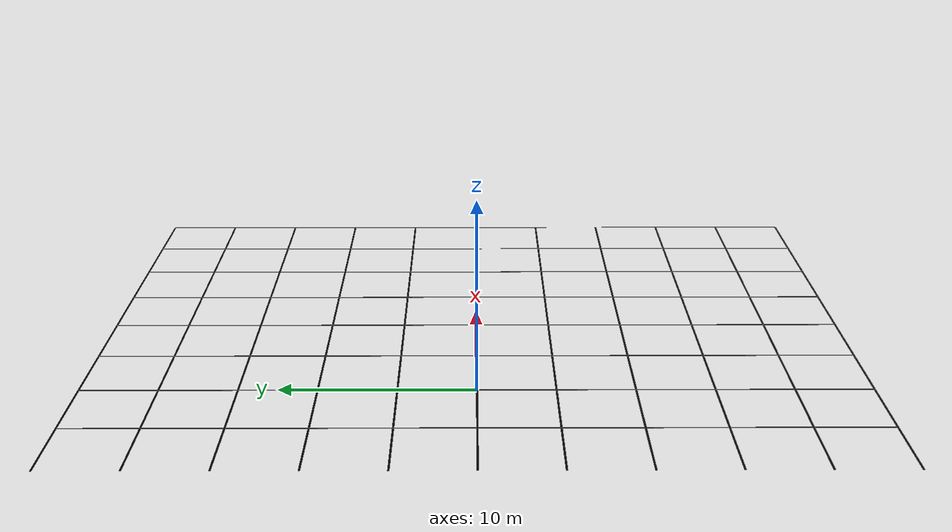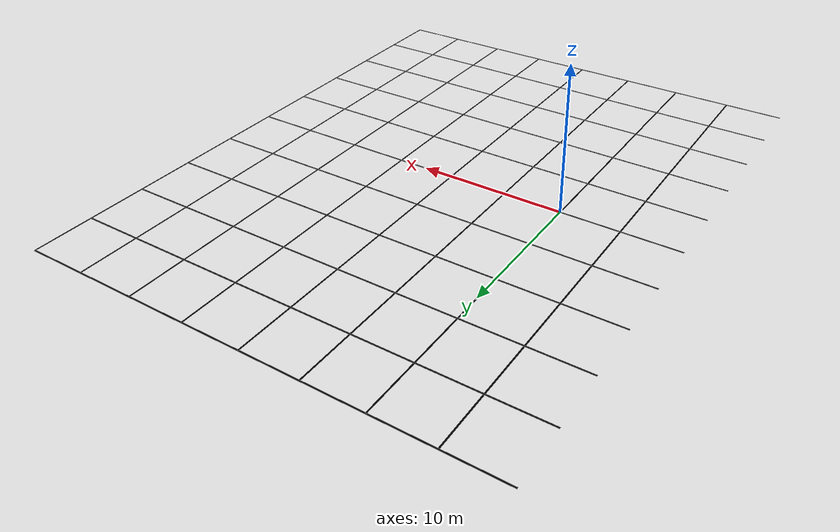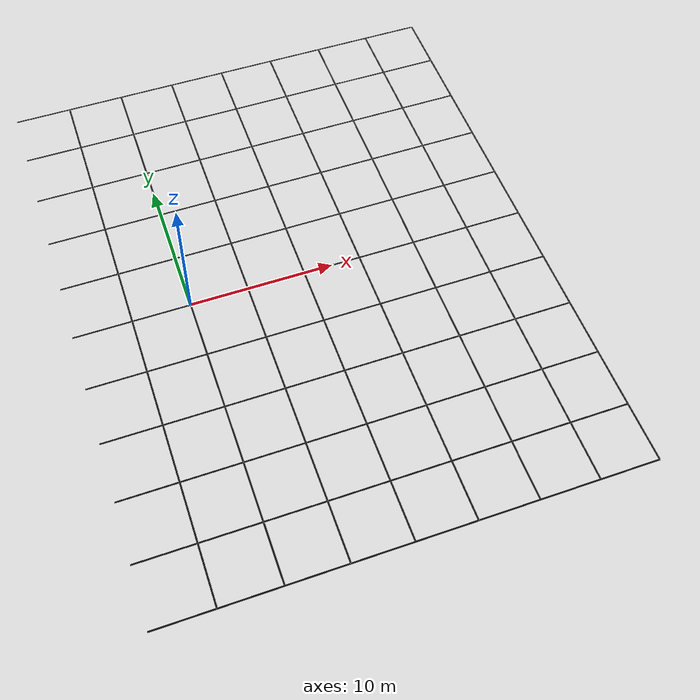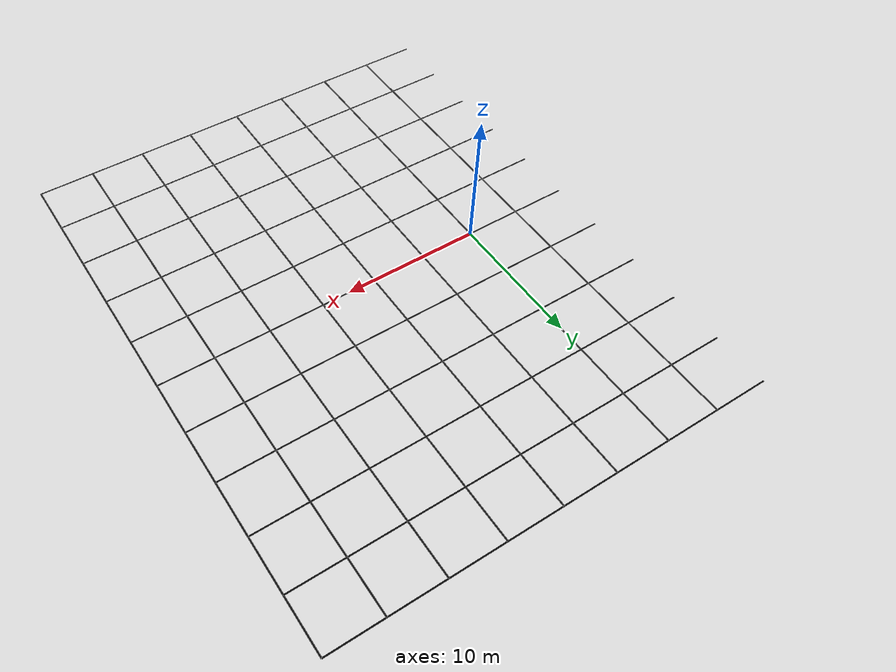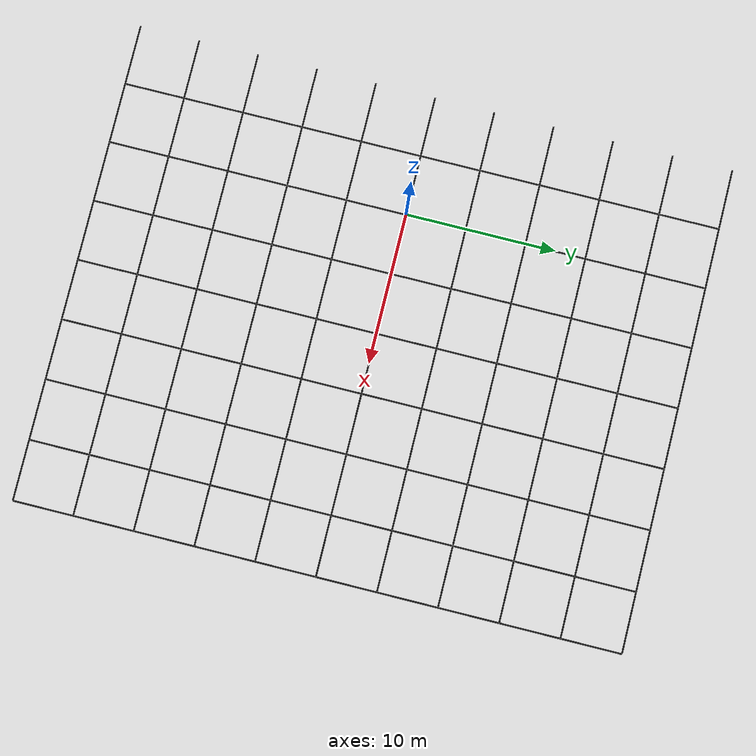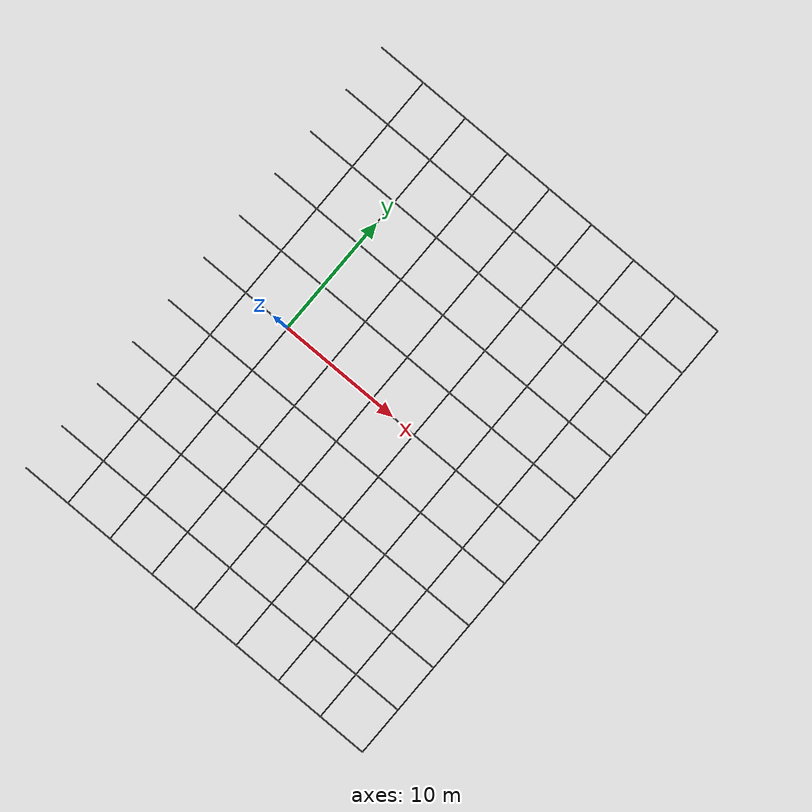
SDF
<sdf version="1.8">
 <world name="default">
  <plugin filename="gz-sim-physics-system" name="gz::sim::systems::Physics"/>
  <plugin filename="gz-sim-sensors-system" name="gz::sim::systems::Sensors">
   <render_engine>ogre2</render_engine>
  </plugin>
  <plugin filename="gz-sim-contact-system" name="gz::sim::systems::Contact"/>
  <plugin filename="gz-sim-scene-broadcaster-system" name="gz::sim::systems::SceneBroadcaster"/>
  <plugin filename="gz-sim-user-commands-system" name="gz::sim::systems::UserCommands"/>
  <physics name="fast" type="ignored">
   <max_step_size>0.001</max_step_size>
   <real_time_factor>1.0</real_time_factor>
  </physics>
  <scene><ambient>0.4 0.4 0.4 1</ambient><background>0.7 0.7 0.7 1</background><grid>false</grid></scene>
  <light type="directional" name="sun">
   <cast_shadows>false</cast_shadows>
   <pose>0 0 10 0 0 0</pose>
   <diffuse>0.8 0.8 0.8 1</diffuse>
   <specular>0.2 0.2 0.2 1</specular>
   <direction>-0.5 0.1 -0.9</direction>
  </light>
  <model name="ground_plane">
   <static>true</static>
   <link name="link">
    <collision name="collision">
     <geometry><plane><normal>0 0 1</normal><size>100 100</size></plane></geometry>
    </collision>
   </link>
  </model>
  <model name="amr_grid_track">
   <static>true</static>
   <pose>8.0 0 0.01 0 0 0</pose>
   <link name="line_x_-20">
    <pose>0 -20 0 0 0 0</pose>
    <visual name="vis_x_-20">
     <geometry><box><size>32 0.1 0.001</size></box></geometry>
     <material><ambient>0 0 0 1</ambient><diffuse>0 0 0 1</diffuse></material>
    </visual>
   </link>
   <link name="line_x_-16">
    <pose>0 -16 0 0 0 0</pose>
    <visual name="vis_x_-16">
     <geometry><box><size>32 0.1 0.001</size></box></geometry>
     <material><ambient>0 0 0 1</ambient><diffuse>0 0 0 1</diffuse></material>
    </visual>
   </link>
   <link name="line_x_-12">
    <pose>0 -12 0 0 0 0</pose>
    <visual name="vis_x_-12">
     <geometry><box><size>32 0.1 0.001</size></box></geometry>
     <material><ambient>0 0 0 1</ambient><diffuse>0 0 0 1</diffuse></material>
    </visual>
   </link>
   <link name="line_x_-8">
    <pose>0 -8 0 0 0 0</pose>
    <visual name="vis_x_-8">
     <geometry><box><size>32 0.1 0.001</size></box></geometry>
     <material><ambient>0 0 0 1</ambient><diffuse>0 0 0 1</diffuse></material>
    </visual>
   </link>
   <link name="line_x_-4">
    <pose>0 -4 0 0 0 0</pose>
    <visual name="vis_x_-4">
     <geometry><box><size>32 0.1 0.001</size></box></geometry>
     <material><ambient>0 0 0 1</ambient><diffuse>0 0 0 1</diffuse></material>
    </visual>
   </link>
   <link name="line_x_0">
    <visual name="vis_x_0">
     <geometry><box><size>32 0.1 0.001</size></box></geometry>
     <material><ambient>0 0 0 1</ambient><diffuse>0 0 0 1</diffuse></material>
    </visual>
   </link>
   <link name="line_x_4">
    <pose>0 4 0 0 0 0</pose>
    <visual name="vis_x_4">
     <geometry><box><size>32 0.1 0.001</size></box></geometry>
     <material><ambient>0 0 0 1</ambient><diffuse>0 0 0 1</diffuse></material>
    </visual>
   </link>
   <link name="line_x_8">
    <pose>0 8 0 0 0 0</pose>
    <visual name="vis_x_8">
     <geometry><box><size>32 0.1 0.001</size></box></geometry>
     <material><ambient>0 0 0 1</ambient><diffuse>0 0 0 1</diffuse></material>
    </visual>
   </link>
   <link name="line_x_12">
    <pose>0 12 0 0 0 0</pose>
    <visual name="vis_x_12">
     <geometry><box><size>32 0.1 0.001</size></box></geometry>
     <material><ambient>0 0 0 1</ambient><diffuse>0 0 0 1</diffuse></material>
    </visual>
   </link>
   <link name="line_x_16">
    <pose>0 16 0 0 0 0</pose>
    <visual name="vis_x_16">
     <geometry><box><size>32 0.1 0.001</size></box></geometry>
     <material><ambient>0 0 0 1</ambient><diffuse>0 0 0 1</diffuse></material>
    </visual>
   </link>
   <link name="line_x_20">
    <pose>0 20 0 0 0 0</pose>
    <visual name="vis_x_20">
     <geometry><box><size>32 0.1 0.001</size></box></geometry>
     <material><ambient>0 0 0 1</ambient><diffuse>0 0 0 1</diffuse></material>
    </visual>
   </link>
   <link name="line_y_-12">
    <pose>-12 0 0 0 0 0</pose>
    <visual name="vis_y_-12">
     <geometry><box><size>0.1 40 0.001</size></box></geometry>
     <material><ambient>0 0 0 1</ambient><diffuse>0 0 0 1</diffuse></material>
    </visual>
   </link>
   <link name="line_y_-8">
    <pose>-8 0 0 0 0 0</pose>
    <visual name="vis_y_-8">
     <geometry><box><size>0.1 40 0.001</size></box></geometry>
     <material><ambient>0 0 0 1</ambient><diffuse>0 0 0 1</diffuse></material>
    </visual>
   </link>
   <link name="line_y_-4">
    <pose>-4 0 0 0 0 0</pose>
    <visual name="vis_y_-4">
     <geometry><box><size>0.1 40 0.001</size></box></geometry>
     <material><ambient>0 0 0 1</ambient><diffuse>0 0 0 1</diffuse></material>
    </visual>
   </link>
   <link name="line_y_0">
    <visual name="vis_y_0">
     <geometry><box><size>0.1 40 0.001</size></box></geometry>
     <material><ambient>0 0 0 1</ambient><diffuse>0 0 0 1</diffuse></material>
    </visual>
   </link>
   <link name="line_y_4">
    <pose>4 0 0 0 0 0</pose>
    <visual name="vis_y_4">
     <geometry><box><size>0.1 40 0.001</size></box></geometry>
     <material><ambient>0 0 0 1</ambient><diffuse>0 0 0 1</diffuse></material>
    </visual>
   </link>
   <link name="line_y_8">
    <pose>8 0 0 0 0 0</pose>
    <visual name="vis_y_8">
     <geometry><box><size>0.1 40 0.001</size></box></geometry>
     <material><ambient>0 0 0 1</ambient><diffuse>0 0 0 1</diffuse></material>
    </visual>
   </link>
   <link name="line_y_12">
    <pose>12 0 0 0 0 0</pose>
    <visual name="vis_y_12">
     <geometry><box><size>0.1 40 0.001</size></box></geometry>
     <material><ambient>0 0 0 1</ambient><diffuse>0 0 0 1</diffuse></material>
    </visual>
   </link>
   <link name="line_y_16">
    <pose>16 0 0 0 0 0</pose>
    <visual name="vis_y_16">
     <geometry><box><size>0.1 40 0.001</size></box></geometry>
     <material><ambient>0 0 0 1</ambient><diffuse>0 0 0 1</diffuse></material>
    </visual>
   </link>
  </model>
 </world>
</sdf>
